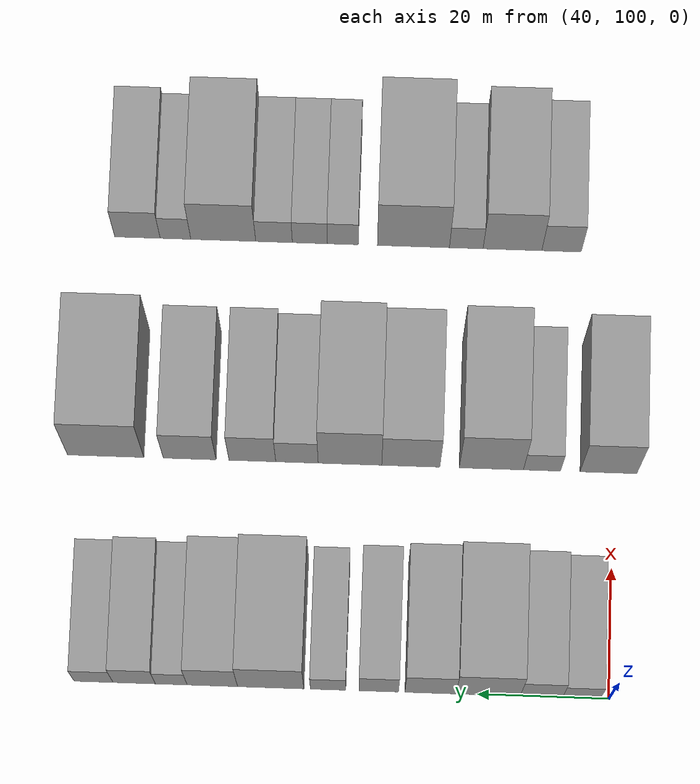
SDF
<sdf version="1.6">
 <world name="default">
  <model name="building_48">
   <static>1</static>
   <pose>50.0000 104.2200 0 0.000000 0.000000 0.000000</pose>
   <link name="link">
    <pose>0 0 6.00 0 0 0</pose>
    <collision name="collision"><geometry><box><size>20.0000 5.7649 12.0000</size></box></geometry></collision>
    <visual name="visual">
     <cast_shadows>0</cast_shadows>
     <geometry><box><size>20.0000 5.7649 12.0000</size></box></geometry>
     <material>
      <script>
       <uri>model://grey_wall/materials/scripts</uri>
       <uri>model://grey_wall/materials/textures</uri>
       <name>vrc/grey_wall</name>
      </script>
     </material>
    </visual>
   </link>
  </model>
  <model name="building_49">
   <static>1</static>
   <pose>50.0000 110.3169 0 0.000000 0.000000 0.000000</pose>
   <link name="link">
    <pose>0 0 7.50 0 0 0</pose>
    <collision name="collision"><geometry><box><size>20.0000 6.4288 15.0000</size></box></geometry></collision>
    <visual name="visual">
     <cast_shadows>0</cast_shadows>
     <geometry><box><size>20.0000 6.4288 15.0000</size></box></geometry>
     <material>
      <script>
       <uri>model://grey_wall/materials/scripts</uri>
       <uri>model://grey_wall/materials/textures</uri>
       <name>vrc/grey_wall</name>
      </script>
     </material>
    </visual>
   </link>
  </model>
  <model name="building_50">
   <static>1</static>
   <pose>50.0000 118.4352 0 0.000000 0.000000 0.000000</pose>
   <link name="link">
    <pose>0 0 10.50 0 0 0</pose>
    <collision name="collision"><geometry><box><size>20.0000 9.8078 21.0000</size></box></geometry></collision>
    <visual name="visual">
     <cast_shadows>0</cast_shadows>
     <geometry><box><size>20.0000 9.8078 21.0000</size></box></geometry>
     <material>
      <script>
       <uri>model://grey_wall/materials/scripts</uri>
       <uri>model://grey_wall/materials/textures</uri>
       <name>vrc/grey_wall</name>
      </script>
     </material>
    </visual>
   </link>
  </model>
  <model name="building_51">
   <static>1</static>
   <pose>50.0000 127.1973 0 0.000000 0.000000 0.000000</pose>
   <link name="link">
    <pose>0 0 9.00 0 0 0</pose>
    <collision name="collision"><geometry><box><size>20.0000 7.7165 18.0000</size></box></geometry></collision>
    <visual name="visual">
     <cast_shadows>0</cast_shadows>
     <geometry><box><size>20.0000 7.7165 18.0000</size></box></geometry>
     <material>
      <script>
       <uri>model://grey_wall/materials/scripts</uri>
       <uri>model://grey_wall/materials/textures</uri>
       <name>vrc/grey_wall</name>
      </script>
     </material>
    </visual>
   </link>
  </model>
  <model name="building_52">
   <static>1</static>
   <pose>50.0000 135.0569 0 0.000000 0.000000 0.000000</pose>
   <link name="link">
    <pose>0 0 7.50 0 0 0</pose>
    <collision name="collision"><geometry><box><size>20.0000 6.0026 15.0000</size></box></geometry></collision>
    <visual name="visual">
     <cast_shadows>0</cast_shadows>
     <geometry><box><size>20.0000 6.0026 15.0000</size></box></geometry>
     <material>
      <script>
       <uri>model://grey_wall/materials/scripts</uri>
       <uri>model://grey_wall/materials/textures</uri>
       <name>vrc/grey_wall</name>
      </script>
     </material>
    </visual>
   </link>
  </model>
  <model name="building_53">
   <static>1</static>
   <pose>50.0000 142.7467 0 0.000000 0.000000 0.000000</pose>
   <link name="link">
    <pose>0 0 6.00 0 0 0</pose>
    <collision name="collision"><geometry><box><size>20.0000 5.3771 12.0000</size></box></geometry></collision>
    <visual name="visual">
     <cast_shadows>0</cast_shadows>
     <geometry><box><size>20.0000 5.3771 12.0000</size></box></geometry>
     <material>
      <script>
       <uri>model://grey_wall/materials/scripts</uri>
       <uri>model://grey_wall/materials/textures</uri>
       <name>vrc/grey_wall</name>
      </script>
     </material>
    </visual>
   </link>
  </model>
  <model name="building_54">
   <static>1</static>
   <pose>50.0000 151.4809 0 0.000000 0.000000 0.000000</pose>
   <link name="link">
    <pose>0 0 10.50 0 0 0</pose>
    <collision name="collision"><geometry><box><size>20.0000 10.0912 21.0000</size></box></geometry></collision>
    <visual name="visual">
     <cast_shadows>0</cast_shadows>
     <geometry><box><size>20.0000 10.0912 21.0000</size></box></geometry>
     <material>
      <script>
       <uri>model://grey_wall/materials/scripts</uri>
       <uri>model://grey_wall/materials/textures</uri>
       <name>vrc/grey_wall</name>
      </script>
     </material>
    </visual>
   </link>
  </model>
  <model name="building_55">
   <static>1</static>
   <pose>50.0000 160.3625 0 0.000000 0.000000 0.000000</pose>
   <link name="link">
    <pose>0 0 9.00 0 0 0</pose>
    <collision name="collision"><geometry><box><size>20.0000 7.6720 18.0000</size></box></geometry></collision>
    <visual name="visual">
     <cast_shadows>0</cast_shadows>
     <geometry><box><size>20.0000 7.6720 18.0000</size></box></geometry>
     <material>
      <script>
       <uri>model://grey_wall/materials/scripts</uri>
       <uri>model://grey_wall/materials/textures</uri>
       <name>vrc/grey_wall</name>
      </script>
     </material>
    </visual>
   </link>
  </model>
  <model name="building_56">
   <static>1</static>
   <pose>50.0000 166.6195 0 0.000000 0.000000 0.000000</pose>
   <link name="link">
    <pose>0 0 6.00 0 0 0</pose>
    <collision name="collision"><geometry><box><size>20.0000 4.8420 12.0000</size></box></geometry></collision>
    <visual name="visual">
     <cast_shadows>0</cast_shadows>
     <geometry><box><size>20.0000 4.8420 12.0000</size></box></geometry>
     <material>
      <script>
       <uri>model://grey_wall/materials/scripts</uri>
       <uri>model://grey_wall/materials/textures</uri>
       <name>vrc/grey_wall</name>
      </script>
     </material>
    </visual>
   </link>
  </model>
  <model name="building_57">
   <static>1</static>
   <pose>50.0000 172.2612 0 0.000000 0.000000 0.000000</pose>
   <link name="link">
    <pose>0 0 7.50 0 0 0</pose>
    <collision name="collision"><geometry><box><size>20.0000 6.4413 15.0000</size></box></geometry></collision>
    <visual name="visual">
     <cast_shadows>0</cast_shadows>
     <geometry><box><size>20.0000 6.4413 15.0000</size></box></geometry>
     <material>
      <script>
       <uri>model://grey_wall/materials/scripts</uri>
       <uri>model://grey_wall/materials/textures</uri>
       <name>vrc/grey_wall</name>
      </script>
     </material>
    </visual>
   </link>
  </model>
  <model name="building_58">
   <static>1</static>
   <pose>50.0000 178.4415 0 0.000000 0.000000 0.000000</pose>
   <link name="link">
    <pose>0 0 6.00 0 0 0</pose>
    <collision name="collision"><geometry><box><size>20.0000 5.9194 12.0000</size></box></geometry></collision>
    <visual name="visual">
     <cast_shadows>0</cast_shadows>
     <geometry><box><size>20.0000 5.9194 12.0000</size></box></geometry>
     <material>
      <script>
       <uri>model://grey_wall/materials/scripts</uri>
       <uri>model://grey_wall/materials/textures</uri>
       <name>vrc/grey_wall</name>
      </script>
     </material>
    </visual>
   </link>
  </model>
  <model name="building_129">
   <static>1</static>
   <pose>85.0000 100.7030 0 0.000000 0.000000 0.000000</pose>
   <link name="link">
    <pose>0 0 10.50 0 0 0</pose>
    <collision name="collision"><geometry><box><size>20.0000 8.7663 21.0000</size></box></geometry></collision>
    <visual name="visual">
     <cast_shadows>0</cast_shadows>
     <geometry><box><size>20.0000 8.7663 21.0000</size></box></geometry>
     <material>
      <script>
       <uri>model://grey_wall/materials/scripts</uri>
       <uri>model://grey_wall/materials/textures</uri>
       <name>vrc/grey_wall</name>
      </script>
     </material>
    </visual>
   </link>
  </model>
  <model name="building_130">
   <static>1</static>
   <pose>85.0000 110.9549 0 0.000000 0.000000 0.000000</pose>
   <link name="link">
    <pose>0 0 6.00 0 0 0</pose>
    <collision name="collision"><geometry><box><size>20.0000 5.7376 12.0000</size></box></geometry></collision>
    <visual name="visual">
     <cast_shadows>0</cast_shadows>
     <geometry><box><size>20.0000 5.7376 12.0000</size></box></geometry>
     <material>
      <script>
       <uri>model://grey_wall/materials/scripts</uri>
       <uri>model://grey_wall/materials/textures</uri>
       <name>vrc/grey_wall</name>
      </script>
     </material>
    </visual>
   </link>
  </model>
  <model name="building_131">
   <static>1</static>
   <pose>85.0000 118.7785 0 0.000000 0.000000 0.000000</pose>
   <link name="link">
    <pose>0 0 12.00 0 0 0</pose>
    <collision name="collision"><geometry><box><size>20.0000 9.9097 24.0000</size></box></geometry></collision>
    <visual name="visual">
     <cast_shadows>0</cast_shadows>
     <geometry><box><size>20.0000 9.9097 24.0000</size></box></geometry>
     <material>
      <script>
       <uri>model://grey_wall/materials/scripts</uri>
       <uri>model://grey_wall/materials/textures</uri>
       <name>vrc/grey_wall</name>
      </script>
     </material>
    </visual>
   </link>
  </model>
  <model name="building_132">
   <static>1</static>
   <pose>85.0000 131.2164 0 0.000000 0.000000 0.000000</pose>
   <link name="link">
    <pose>0 0 10.50 0 0 0</pose>
    <collision name="collision"><geometry><box><size>20.0000 8.9660 21.0000</size></box></geometry></collision>
    <visual name="visual">
     <cast_shadows>0</cast_shadows>
     <geometry><box><size>20.0000 8.9660 21.0000</size></box></geometry>
     <material>
      <script>
       <uri>model://grey_wall/materials/scripts</uri>
       <uri>model://grey_wall/materials/textures</uri>
       <name>vrc/grey_wall</name>
      </script>
     </material>
    </visual>
   </link>
  </model>
  <model name="building_133">
   <static>1</static>
   <pose>85.0000 140.6060 0 0.000000 0.000000 0.000000</pose>
   <link name="link">
    <pose>0 0 12.00 0 0 0</pose>
    <collision name="collision"><geometry><box><size>20.0000 9.8133 24.0000</size></box></geometry></collision>
    <visual name="visual">
     <cast_shadows>0</cast_shadows>
     <geometry><box><size>20.0000 9.8133 24.0000</size></box></geometry>
     <material>
      <script>
       <uri>model://grey_wall/materials/scripts</uri>
       <uri>model://grey_wall/materials/textures</uri>
       <name>vrc/grey_wall</name>
      </script>
     </material>
    </visual>
   </link>
  </model>
  <model name="building_134">
   <static>1</static>
   <pose>85.0000 148.7851 0 0.000000 0.000000 0.000000</pose>
   <link name="link">
    <pose>0 0 7.50 0 0 0</pose>
    <collision name="collision"><geometry><box><size>20.0000 6.5448 15.0000</size></box></geometry></collision>
    <visual name="visual">
     <cast_shadows>0</cast_shadows>
     <geometry><box><size>20.0000 6.5448 15.0000</size></box></geometry>
     <material>
      <script>
       <uri>model://grey_wall/materials/scripts</uri>
       <uri>model://grey_wall/materials/textures</uri>
       <name>vrc/grey_wall</name>
      </script>
     </material>
    </visual>
   </link>
  </model>
  <model name="building_135">
   <static>1</static>
   <pose>85.0000 155.6688 0 0.000000 0.000000 0.000000</pose>
   <link name="link">
    <pose>0 0 9.00 0 0 0</pose>
    <collision name="collision"><geometry><box><size>20.0000 7.2227 18.0000</size></box></geometry></collision>
    <visual name="visual">
     <cast_shadows>0</cast_shadows>
     <geometry><box><size>20.0000 7.2227 18.0000</size></box></geometry>
     <material>
      <script>
       <uri>model://grey_wall/materials/scripts</uri>
       <uri>model://grey_wall/materials/textures</uri>
       <name>vrc/grey_wall</name>
      </script>
     </material>
    </visual>
   </link>
  </model>
  <model name="building_136">
   <static>1</static>
   <pose>85.0000 165.3588 0 0.000000 0.000000 0.000000</pose>
   <link name="link">
    <pose>0 0 9.00 0 0 0</pose>
    <collision name="collision"><geometry><box><size>20.0000 8.1575 18.0000</size></box></geometry></collision>
    <visual name="visual">
     <cast_shadows>0</cast_shadows>
     <geometry><box><size>20.0000 8.1575 18.0000</size></box></geometry>
     <material>
      <script>
       <uri>model://grey_wall/materials/scripts</uri>
       <uri>model://grey_wall/materials/textures</uri>
       <name>vrc/grey_wall</name>
      </script>
     </material>
    </visual>
   </link>
  </model>
  <model name="building_137">
   <static>1</static>
   <pose>85.0000 178.3386 0 0.000000 0.000000 0.000000</pose>
   <link name="link">
    <pose>0 0 12.00 0 0 0</pose>
    <collision name="collision"><geometry><box><size>20.0000 11.8021 24.0000</size></box></geometry></collision>
    <visual name="visual">
     <cast_shadows>0</cast_shadows>
     <geometry><box><size>20.0000 11.8021 24.0000</size></box></geometry>
     <material>
      <script>
       <uri>model://grey_wall/materials/scripts</uri>
       <uri>model://grey_wall/materials/textures</uri>
       <name>vrc/grey_wall</name>
      </script>
     </material>
    </visual>
   </link>
  </model>
  <model name="building_214">
   <static>1</static>
   <pose>120.0000 108.6529 0 0.000000 0.000000 0.000000</pose>
   <link name="link">
    <pose>0 0 7.50 0 0 0</pose>
    <collision name="collision"><geometry><box><size>20.0000 6.1696 15.0000</size></box></geometry></collision>
    <visual name="visual">
     <cast_shadows>0</cast_shadows>
     <geometry><box><size>20.0000 6.1696 15.0000</size></box></geometry>
     <material>
      <script>
       <uri>model://grey_wall/materials/scripts</uri>
       <uri>model://grey_wall/materials/textures</uri>
       <name>vrc/grey_wall</name>
      </script>
     </material>
    </visual>
   </link>
  </model>
  <model name="building_215">
   <static>1</static>
   <pose>120.0000 116.3397 0 0.000000 0.000000 0.000000</pose>
   <link name="link">
    <pose>0 0 10.50 0 0 0</pose>
    <collision name="collision"><geometry><box><size>20.0000 9.2039 21.0000</size></box></geometry></collision>
    <visual name="visual">
     <cast_shadows>0</cast_shadows>
     <geometry><box><size>20.0000 9.2039 21.0000</size></box></geometry>
     <material>
      <script>
       <uri>model://grey_wall/materials/scripts</uri>
       <uri>model://grey_wall/materials/textures</uri>
       <name>vrc/grey_wall</name>
      </script>
     </material>
    </visual>
   </link>
  </model>
  <model name="building_216">
   <static>1</static>
   <pose>120.0000 123.5736 0 0.000000 0.000000 0.000000</pose>
   <link name="link">
    <pose>0 0 6.00 0 0 0</pose>
    <collision name="collision"><geometry><box><size>20.0000 5.2640 12.0000</size></box></geometry></collision>
    <visual name="visual">
     <cast_shadows>0</cast_shadows>
     <geometry><box><size>20.0000 5.2640 12.0000</size></box></geometry>
     <material>
      <script>
       <uri>model://grey_wall/materials/scripts</uri>
       <uri>model://grey_wall/materials/textures</uri>
       <name>vrc/grey_wall</name>
      </script>
     </material>
    </visual>
   </link>
  </model>
  <model name="building_217">
   <static>1</static>
   <pose>120.0000 131.8440 0 0.000000 0.000000 0.000000</pose>
   <link name="link">
    <pose>0 0 12.00 0 0 0</pose>
    <collision name="collision"><geometry><box><size>20.0000 11.2766 24.0000</size></box></geometry></collision>
    <visual name="visual">
     <cast_shadows>0</cast_shadows>
     <geometry><box><size>20.0000 11.2766 24.0000</size></box></geometry>
     <material>
      <script>
       <uri>model://grey_wall/materials/scripts</uri>
       <uri>model://grey_wall/materials/textures</uri>
       <name>vrc/grey_wall</name>
      </script>
     </material>
    </visual>
   </link>
  </model>
  <model name="building_218">
   <static>1</static>
   <pose>120.0000 142.9011 0 0.000000 0.000000 0.000000</pose>
   <link name="link">
    <pose>0 0 6.00 0 0 0</pose>
    <collision name="collision"><geometry><box><size>20.0000 4.8377 12.0000</size></box></geometry></collision>
    <visual name="visual">
     <cast_shadows>0</cast_shadows>
     <geometry><box><size>20.0000 4.8377 12.0000</size></box></geometry>
     <material>
      <script>
       <uri>model://grey_wall/materials/scripts</uri>
       <uri>model://grey_wall/materials/textures</uri>
       <name>vrc/grey_wall</name>
      </script>
     </material>
    </visual>
   </link>
  </model>
  <model name="building_219">
   <static>1</static>
   <pose>120.0000 148.0628 0 0.000000 0.000000 0.000000</pose>
   <link name="link">
    <pose>0 0 6.00 0 0 0</pose>
    <collision name="collision"><geometry><box><size>20.0000 5.4856 12.0000</size></box></geometry></collision>
    <visual name="visual">
     <cast_shadows>0</cast_shadows>
     <geometry><box><size>20.0000 5.4856 12.0000</size></box></geometry>
     <material>
      <script>
       <uri>model://grey_wall/materials/scripts</uri>
       <uri>model://grey_wall/materials/textures</uri>
       <name>vrc/grey_wall</name>
      </script>
     </material>
    </visual>
   </link>
  </model>
  <model name="building_220">
   <static>1</static>
   <pose>120.0000 153.6775 0 0.000000 0.000000 0.000000</pose>
   <link name="link">
    <pose>0 0 6.00 0 0 0</pose>
    <collision name="collision"><geometry><box><size>20.0000 5.7438 12.0000</size></box></geometry></collision>
    <visual name="visual">
     <cast_shadows>0</cast_shadows>
     <geometry><box><size>20.0000 5.7438 12.0000</size></box></geometry>
     <material>
      <script>
       <uri>model://grey_wall/materials/scripts</uri>
       <uri>model://grey_wall/materials/textures</uri>
       <name>vrc/grey_wall</name>
      </script>
     </material>
    </visual>
   </link>
  </model>
  <model name="building_221">
   <static>1</static>
   <pose>120.0000 161.6385 0 0.000000 0.000000 0.000000</pose>
   <link name="link">
    <pose>0 0 10.50 0 0 0</pose>
    <collision name="collision"><geometry><box><size>20.0000 10.1784 21.0000</size></box></geometry></collision>
    <visual name="visual">
     <cast_shadows>0</cast_shadows>
     <geometry><box><size>20.0000 10.1784 21.0000</size></box></geometry>
     <material>
      <script>
       <uri>model://grey_wall/materials/scripts</uri>
       <uri>model://grey_wall/materials/textures</uri>
       <name>vrc/grey_wall</name>
      </script>
     </material>
    </visual>
   </link>
  </model>
  <model name="building_222">
   <static>1</static>
   <pose>120.0000 169.1305 0 0.000000 0.000000 0.000000</pose>
   <link name="link">
    <pose>0 0 6.00 0 0 0</pose>
    <collision name="collision"><geometry><box><size>20.0000 4.8055 12.0000</size></box></geometry></collision>
    <visual name="visual">
     <cast_shadows>0</cast_shadows>
     <geometry><box><size>20.0000 4.8055 12.0000</size></box></geometry>
     <material>
      <script>
       <uri>model://grey_wall/materials/scripts</uri>
       <uri>model://grey_wall/materials/textures</uri>
       <name>vrc/grey_wall</name>
      </script>
     </material>
    </visual>
   </link>
  </model>
  <model name="building_223">
   <static>1</static>
   <pose>120.0000 175.0907 0 0.000000 0.000000 0.000000</pose>
   <link name="link">
    <pose>0 0 7.50 0 0 0</pose>
    <collision name="collision"><geometry><box><size>20.0000 7.1150 15.0000</size></box></geometry></collision>
    <visual name="visual">
     <cast_shadows>0</cast_shadows>
     <geometry><box><size>20.0000 7.1150 15.0000</size></box></geometry>
     <material>
      <script>
       <uri>model://grey_wall/materials/scripts</uri>
       <uri>model://grey_wall/materials/textures</uri>
       <name>vrc/grey_wall</name>
      </script>
     </material>
    </visual>
   </link>
  </model>
 </world>
</sdf>
